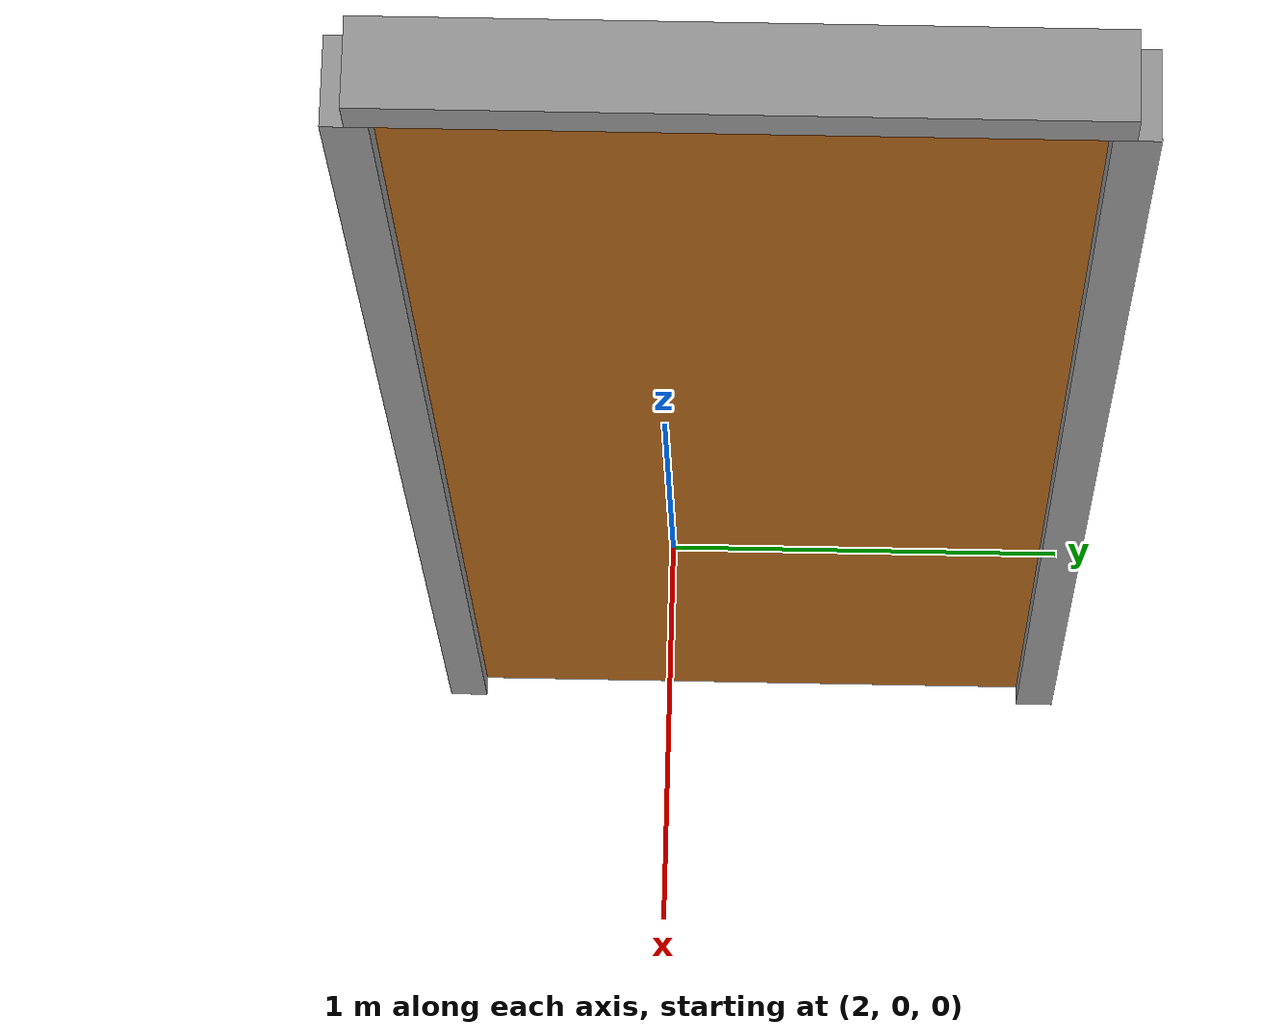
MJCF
<mujoco model="shelf">
    <worldbody>
    <!-- Door frame (fixed in the world) - rotated 90 degrees -->
    <body name="door_frame" pos="2 0.2 1" euler="0 0 -90">
      <!-- Left post -->
      <geom name="frame_left"
            type="box"
            size="0.05 0.1 2.1"
            pos="-0.8 0 0"
            rgba="0.6 0.6 0.6 1"
           />

      <!-- Right post -->
      <geom name="frame_right"
            type="box"
            size="0.05 0.1 2.1"
            pos="0.8 0 0"
            rgba="0.6 0.6 0.6 1"
            />

      <!-- Top cross-bar -->
      <geom name="frame_top"
            type="box"
            size="0.8 0.1 0.05"
            pos="0 0 2.15"
            rgba="0.6 0.6 0.6 1"
            />

      <!-- Hinged door (child of frame) -->
      <body name="door" pos="-0.75 0 0">
        <!-- Hinge joint - positioned at the left edge of the door -->
        <joint name="door_hinge"
               type="hinge"
               pos="0 0 0"
               axis="0 0 1"
               limited="true"
               range="0 120"
               damping="0.1"
               frictionloss="0.1"
               stiffness="0.1"/>

        <!-- Door panel - properly sized and positioned -->
        <geom name="door_panel"
              type="box"
              size="0.75 0.05 2.1"
              pos="0.75 0 0"
              rgba="0.7 0.4 0.1 1"
              contype="1"
              conaffinity="2"
              density="300"
              friction="0.8 0.1 0.1"/>

      </body>

    </body>

  </worldbody>
</mujoco>
